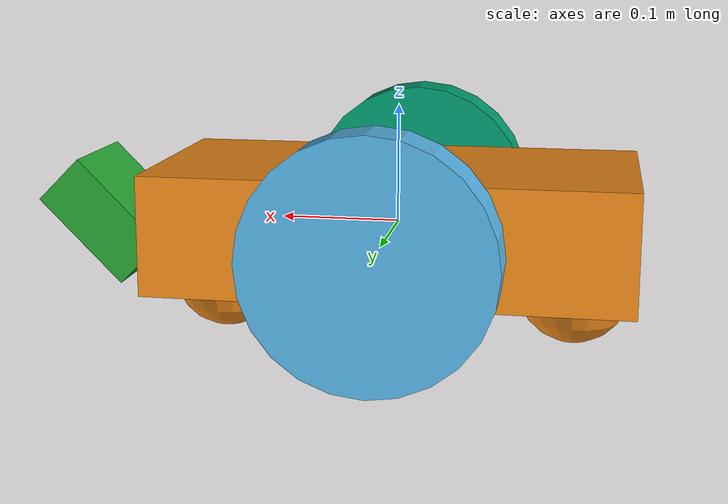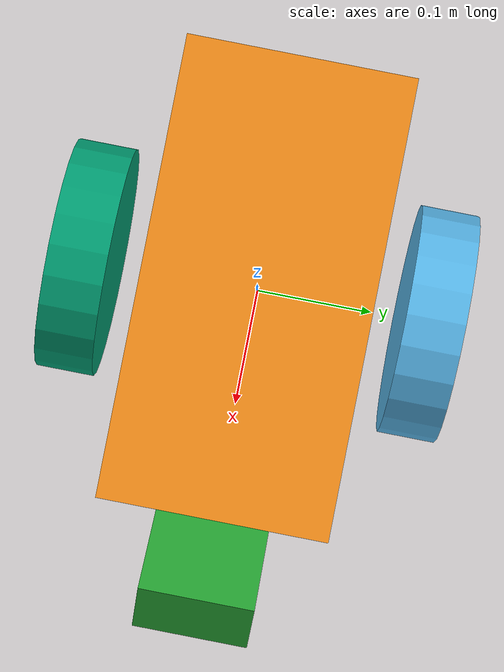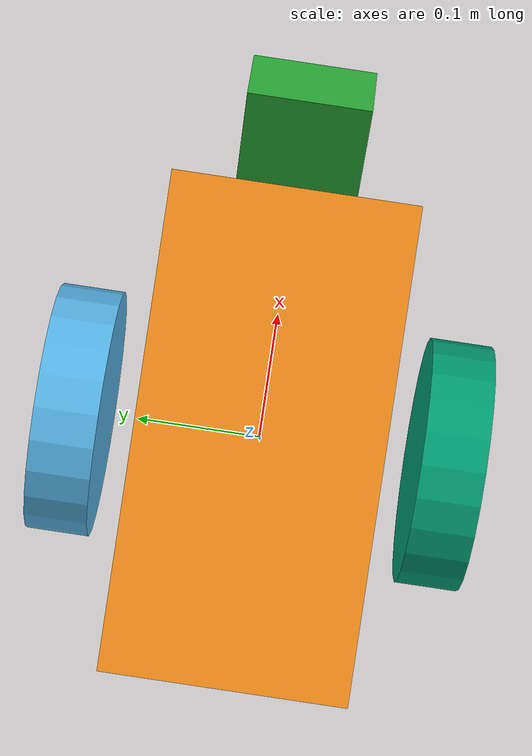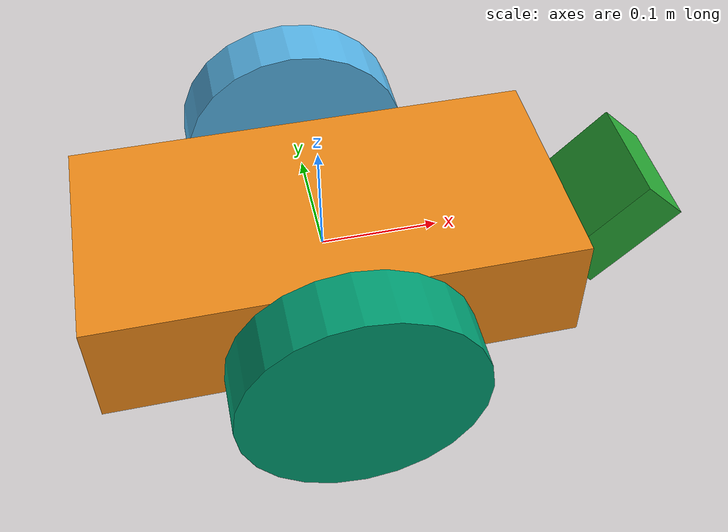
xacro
<?xml version='1.0'?>

<robot name="tablebot" xmlns:xacro="http://www.ros.org/wiki/xacro">

  <!-- xacro:include filename="$(find tbot_description)/urdf/tbot.gazebo" / -->

  <link name='chassis'>
    <pose>0 0 0.1 0 0 0</pose>

    <inertial>
      <mass value="10.0"/>
      <origin xyz="0.0 0 0.1" rpy=" 0 0 0"/>
      <inertia
          ixx="0.5" ixy="0" ixz="0"
          iyy="1.0" iyz="0"
          izz="0.1"
      />
    </inertial>

    <collision name='collision'>
      <geometry>
        <box size=".4 .2 .1"/>
      </geometry>
    </collision>

    <visual name='chassis_visual'>
      <origin xyz="0 0 0" rpy=" 0 0 0"/>
      <geometry>
        <box size=".4 .2 .1"/>
      </geometry>
    </visual>

    <collision name='front_caster_collision'>
      <origin xyz="-0.15 0 -0.05" rpy=" 0 0 0"/>
      <geometry>
        <!--sphere radius="0.05"/-->
        <sphere radius="0.048"/>
      </geometry>
      <surface>
        <friction>
          <ode>
            <mu>0</mu>
            <mu2>0</mu2>
            <slip1>1.0</slip1>
            <slip2>1.0</slip2>
          </ode>
        </friction>
      </surface>
    </collision>

    <visual name='front_caster_visual'>
      <origin xyz="-0.15 0 -0.05" rpy=" 0 0 0"/>
      <geometry>
        <!--sphere radius="0.05"/-->
        <sphere radius="0.048"/>
      </geometry>
    </visual>

    <collision name='back_caster_collision'>
      <origin xyz="0.15 0 -0.05" rpy=" 0 0 0"/>
      <geometry>
        <!--sphere radius="0.05"/-->
        <sphere radius="0.048"/>
      </geometry>
      <surface>
        <friction>
          <ode>
            <mu>0</mu>
            <mu2>0</mu2>
            <slip1>1.0</slip1>
            <slip2>1.0</slip2>
          </ode>
        </friction>
      </surface>
    </collision>

    <visual name='back_caster_visual'>
      <origin xyz="0.15 0 -0.05" rpy=" 0 0 0"/>
      <geometry>
        <!--sphere radius="0.05"/-->
        <sphere radius="0.048"/>
      </geometry>
    </visual>
  </link>

  <link name="left_wheel">
    <!--origin xyz="0.1 0.13 0.1" rpy="0 1.5707 1.5707"/-->
    <collision name="collision">
      <origin xyz="0 0 0" rpy="0 1.5707 1.5707"/>
      <geometry>
        <cylinder radius="0.1" length="0.05"/>
      </geometry>
    </collision>

    <visual name="left_wheel_visual">
      <origin xyz="0 0 0" rpy="0 1.5707 1.5707"/>
      <geometry>
        <cylinder radius="0.1" length="0.05"/>
      </geometry>
    </visual>
    <inertial>
      <origin xyz="0 0 0" rpy="0 1.5707 1.5707"/>
      <mass value="5"/>
      <cylinder_inertia m="5" r="0.1" h="0.05"/>
      <inertia
        ixx="1.0" ixy="0.0" ixz="0.0"
        iyy="1.0" iyz="0.0"
        izz="1.0"/>
    </inertial>
  </link>

  <link name="right_wheel">
    <!--origin xyz="0.1 -0.13 0.1" rpy="0 1.5707 1.5707"/-->
    <collision name="collision">
      <origin xyz="0 0 0" rpy="0 1.5707 1.5707"/>
      <geometry>
        <cylinder radius="0.1" length="0.05"/>
      </geometry>
    </collision>

    <visual name="right_wheel_visual">
      <origin xyz="0 0 0" rpy="0 1.5707 1.5707"/>
      <geometry>
        <cylinder radius="0.1" length="0.05"/>
      </geometry>
    </visual>
    <inertial>
      <origin xyz="0 0 0" rpy="0 1.5707 1.5707"/>
      <mass value="5"/>
      <cylinder_inertia m="5" r="0.1" h="0.05"/>
      <inertia
        ixx="1.0" ixy="0.0" ixz="0.0"
        iyy="1.0" iyz="0.0"
        izz="1.0"/>
    </inertial>
  </link>

  <joint type="continuous" name="left_wheel_hinge">
    <origin xyz="0.0 0.15 0" rpy="0 0 0"/>
    <child link="left_wheel"/>
    <parent link="chassis"/>
    <axis xyz="0 1 0" rpy="0 0 0"/>
    <limit effort="100" velocity="100"/>
    <joint_properties damping="0.0" friction="0.0"/>
  </joint>

  <joint type="continuous" name="right_wheel_hinge">
    <origin xyz="0.0 -0.15 0" rpy="0 0 0"/>
    <child link="right_wheel"/>
    <parent link="chassis"/>
    <axis xyz="0 1 0" rpy="0 0 0"/>
    <limit effort="100" velocity="100"/>
    <joint_properties damping="0.0" friction="0.0"/>
  </joint>

  <joint name="sonar_joint" type="fixed">
	  <axis xyz="0 1 0" />
	  <origin xyz=".25 0 0" rpy="0 0.7854 0" />
	  <parent link="chassis" />
	  <child link="sonar" />
  </joint>

<!--Sonar link -->
<link name="sonar">
    <pose>0 0 0 0 0 0</pose>

    <inertial>
      <mass value="1.0"/>
      <origin xyz="0 0 0" rpy="0 0 0"/>
      <inertia
          ixx="0.5" ixy="0" ixz="0"
          iyy="1.0" iyz="0"
          izz="0.1"
      />
    </inertial>

    <visual name="sonar_visual">
      <origin xyz="0 0 0" rpy=" 0 0 0"/>
      <geometry>
        <box size=".05 .1 .1"/>
      </geometry>
    </visual>
</link>

<!-- Gazebo chassis color -->
<gazebo reference="chassis">
  <material>Gazebo/Orange</material>
</gazebo>

<!-- Diff Drive Gazebo Plugin -->
<gazebo>
	<plugin name="differential_drive_controller" filename="libgazebo_ros_diff_drive.so">
	  <legacyMode>false</legacyMode>
	  <alwaysOn>true</alwaysOn>
	  <updateRate>20</updateRate>
	  <leftJoint>left_wheel_hinge</leftJoint>
	  <rightJoint>right_wheel_hinge</rightJoint>
	  <wheelSeparation>0.3</wheelSeparation>
	  <wheelDiameter>0.2</wheelDiameter>
	  <torque>20</torque>
	  <commandTopic>cmd_vel</commandTopic>
	  <odometryTopic>odom</odometryTopic>
	  <odometryFrame>odom</odometryFrame>
	  <robotBaseFrame>chassis</robotBaseFrame>
	</plugin>
</gazebo>

<!-- Sonar Gazebo Plugin -->
<gazebo reference="sonar">
    <material>Gazebo/Green</material>
    <sensor type="ray" name="sonar_sensor">
        <pose>0 0 0 0 0 0</pose>
        <update_rate>5</update_rate>
        <ray>
            <scan>
                <horizontal>
                    <samples>5</samples>
                    <resolution>1.0</resolution>
                    <min_angle>-0.25</min_angle>
                    <max_angle>0.25</max_angle>
                </horizontal>
                <vertical>
                    <samples>5</samples>
                    <resolution>1</resolution>
                    <min_angle>-0.25</min_angle>
                    <max_angle>0.25</max_angle>
                </vertical>
            </scan>
            <range>
                <min>0.01</min>
                <max>0.75</max>
                <resolution>0.01</resolution>
            </range>
        </ray>

        <plugin filename="libgazebo_ros_range.so" name="gazebo_ros_range">
            <gaussianNoise>0.0</gaussianNoise>
            <alwaysOn>true</alwaysOn>
            <updateRate>5</updateRate>
            <topicName>sonar1</topicName>
            <frameName>sonar</frameName>
            <fov>0.5</fov>
            <radiation>ultrasound</radiation>
        </plugin>
    </sensor>
</gazebo>

</robot>
